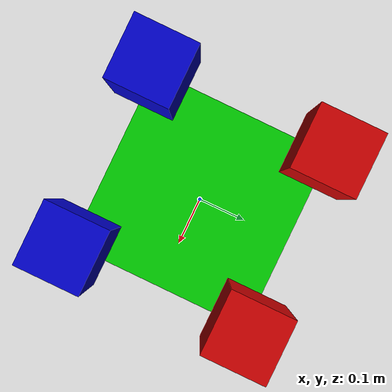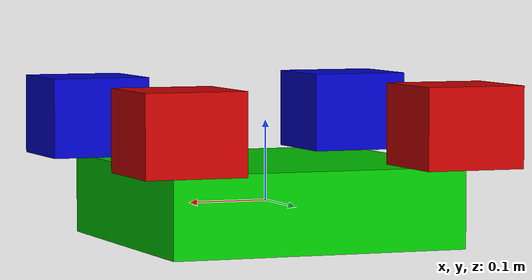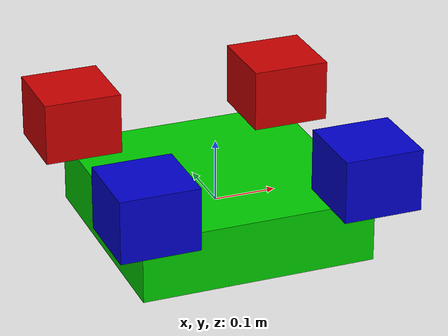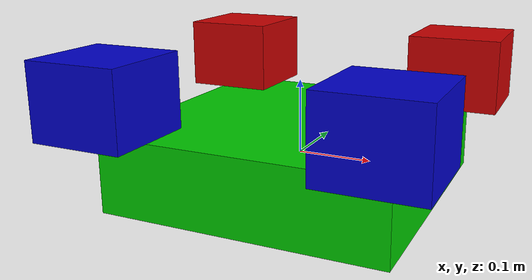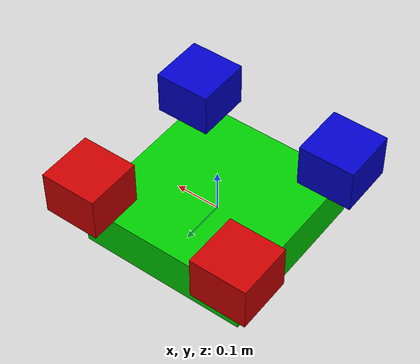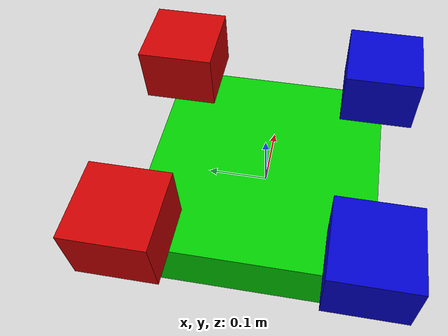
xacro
<?xml version="1.0"?>
<robot name="simple_drone" xmlns:xacro="http://ros.org/wiki/xacro">

  <xacro:property name="width" value=".375" />
  <xacro:property name="length" value=".375" />
  <xacro:property name="height" value=".1" />
  <xacro:property name="pi" value="3.1415" />
  <xacro:property name="rotor_radius" value=".125" />
  <xacro:property name="rotor_height" value=".1" />
  <xacro:property name="rotor_dist" value="0.17677" />

  <xacro:macro name="default_inertial" params="mass">
    <inertial>
      <mass value="${mass}" />
      <inertia ixx="1.0" ixy="0.0" ixz="0.0" iyy="1.0" iyz="0.0" izz="1.0" />
    </inertial>
  </xacro:macro>

  <material name="red">
    <color rgba="0.8 0 0 1"/>
  </material>

  <material name="blue">
    <color rgba="0 0 0.8 1"/>
  </material>

  <material name="green">
    <color rgba="0 0.8 0 1"/>
  </material>

  <link name="base_link">
    <visual>
      <geometry>
        <box size="${length} ${width} ${height}"/>
      </geometry>
      <material name="green"/>
    </visual>
    <collision>
      <geometry>
        <box size="${length} ${width} ${height}"/>
      </geometry>
    </collision>
    <xacro:default_inertial mass="5"/>
  </link>

  <gazebo reference="base_link">
    <material>Gazebo/Green</material>
  </gazebo>

  <xacro:macro name="rotor" params="prefix suffix reflect side color">
    <link name="${prefix}_${suffix}_rotor">
      <visual>
        <geometry>
          <box size="${rotor_radius} ${rotor_radius} ${rotor_height}"/>
        </geometry>
        <material name="${color}"/>
      </visual>
      <collision>
        <geometry>
          <box size="${rotor_radius} ${rotor_radius} ${rotor_height}"/>
        </geometry>
      </collision>
      <xacro:default_inertial mass="1"/>
    </link>

    <joint name="${prefix}_${suffix}_rotor_joint" type="continuous">
      <axis xyz="0 0 1" rpy="0 0 0" />
      <parent link="base_link"/>
      <child link="${prefix}_${suffix}_rotor"/>
      <origin xyz="${rotor_dist*side} ${rotor_dist*reflect} ${height}" rpy="0 0 0"/>
      <limit effort="150" velocity="5"/>
    </joint>

    <transmission name="${prefix}_${suffix}_rotor_trans">
      <type>transmission_interface/SimpleTransmission</type>
      <actuator name="${prefix}_${suffix}_motor">
        <mechanicalReduction>1</mechanicalReduction>
      </actuator>
      <joint name="${prefix}_${suffix}_rotor_joint">
        <hardwareInterface>hardware_interface/VelocityJointInterface</hardwareInterface>
      </joint>
    </transmission>

      <gazebo reference="${prefix}_${suffix}_rotor">
        <material>Gazebo/Red</material>
      </gazebo>

  </xacro:macro>

  <xacro:rotor prefix="right" suffix="front" reflect="-1" side="1" color="blue"/>
  <xacro:rotor prefix="right" suffix="back" reflect="1" side="1" color="red"/>
  <xacro:rotor prefix="left" suffix="front" reflect="-1" side="-1" color="blue"/>
  <xacro:rotor prefix="left" suffix="back" reflect="1" side="-1" color="red"/>

  <gazebo>
    <plugin name="gazebo_ros_control" filename="libgazebo_ros_control.so">
      <robotNamespace>/simple_drone</robotNamespace>
    </plugin>
  </gazebo>

</robot>
